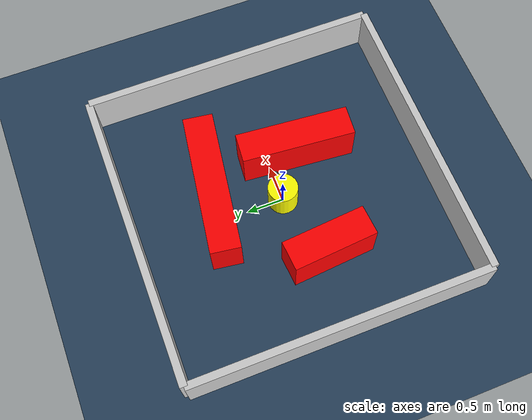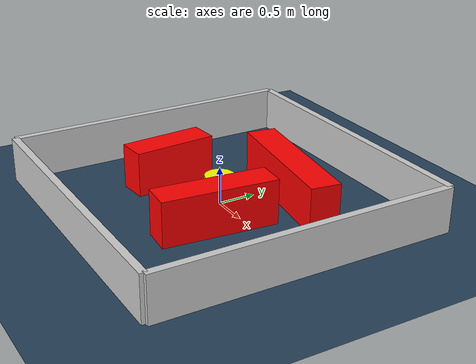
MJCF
<?xml version="1.0" ?>
<mujoco model="generated_environment">
  <option timestep="0.01" integrator="RK4" cone="elliptic"/>
  <default>
    <geom density="1"/>
  </default>
  <asset>
    <texture builtin="gradient" height="3072" rgb1="0.3 0.5 0.7" rgb2="0 0 0" type="skybox" width="512"/>
    <texture builtin="checker" height="300" mark="edge" markrgb="0.8 0.8 0.8" name="groundplane" rgb1="0.2 0.3 0.4" rgb2="0.1 0.2 0.3" type="2d" width="300"/>
    <material name="groundplane" reflectance="0.2" texrepeat="5 5" texture="groundplane" texuniform="true"/>
    <material name="robot" rgba="0.0 1.0 0.0 1"/>
  </asset>
  <worldbody>
    <light dir="0 0 -1" directional="true" pos="0 0 1.5"/>
    <geom condim="4" friction="1.0 0.005 0.001" material="groundplane" name="floor" size="0 0 0.05" type="plane"/>
    <body name="walls">
      <geom name="wall_1" condim="4" pos="-2.0 0.0 0.3" rgba="0.800000011920929 0.800000011920929 0.800000011920929 1.0" size="0.05 2.0 0.3" type="box"/>
      <geom name="wall_2" condim="4" pos="2.0 0.0 0.3" rgba="0.800000011920929 0.800000011920929 0.800000011920929 1.0" size="0.05 2.0 0.3" type="box"/>
      <geom name="wall_3" condim="4" pos="0.0 -2.0 0.3" rgba="0.800000011920929 0.800000011920929 0.800000011920929 1.0" size="2.0 0.05 0.3" type="box"/>
      <geom name="wall_4" condim="4" pos="0.0 2.0 0.3" rgba="0.800000011920929 0.800000011920929 0.800000011920929 1.0" size="2.0 0.05 0.3" type="box"/>
    </body>
    <body name="robot">
      <joint name="joint_x" type="slide" pos="0 0 0" axis="1 0 0"/>
      <joint name="joint_y" type="slide" pos="0 0 0" axis="0 1 0"/>
      <geom name="robot" type="sphere" pos="0.3 0.0 0.2" size="0.05" mass="5." friction="1.0 0.005 0.0001" condim="4" rgba="0.5 0.5 0.5 1.0"/>
      <site name="sensor_ball"/>
    </body>
    <body name="obstacle_movable_1">
      <geom name="obstacle_movable_1" condim="4" pos="0.0 0.0 0.2" euler="0 0 0.0" friction="1.0 0.005 0.001" rgba="1.0 1.0 0.0 1.0" size="0.2 0.2 0.0" type="cylinder" mass="0.1"/>
      <joint type="free"/>
    </body>
    <body name="obstacle_2_static">
      <geom name="obstacle_2_static" condim="4" pos="0.5779643501389069 -0.39891703221159136 0.3" euler="0 0 85.02684914200786" friction="1.0 0.005 0.001" rgba="1 0 0 1" size="0.7608321635088778 0.2 0.3" type="box"/>
    </body>
    <body name="obstacle_3_static">
      <geom name="obstacle_3_static" condim="4" pos="0.3329173663047591 0.8547171538713447 0.3" euler="0 0 351.6322244327032" friction="1.0 0.005 0.001" rgba="1 0 0 1" size="0.9617517250804468 0.2 0.3" type="box"/>
    </body>
    <body name="obstacle_4_static">
      <geom name="obstacle_4_static" condim="4" pos="-0.9261553587981998 -0.26159848173343003 0.3" euler="0 0 94.4037323032016" friction="1.0 0.005 0.001" rgba="1 0 0 1" size="0.5638322672861543 0.2 0.3" type="box"/>
    </body>
  </worldbody>
  <actuator>
    <motor name="actuator_x" joint="joint_x" gear="1" ctrlrange="-1 1"/>
    <motor name="actuator_y" joint="joint_y" gear="1" ctrlrange="-1 1"/>
  </actuator>
</mujoco>
